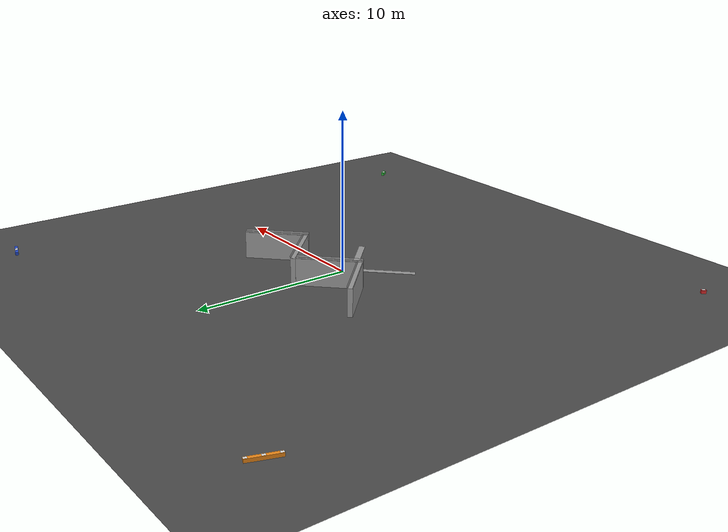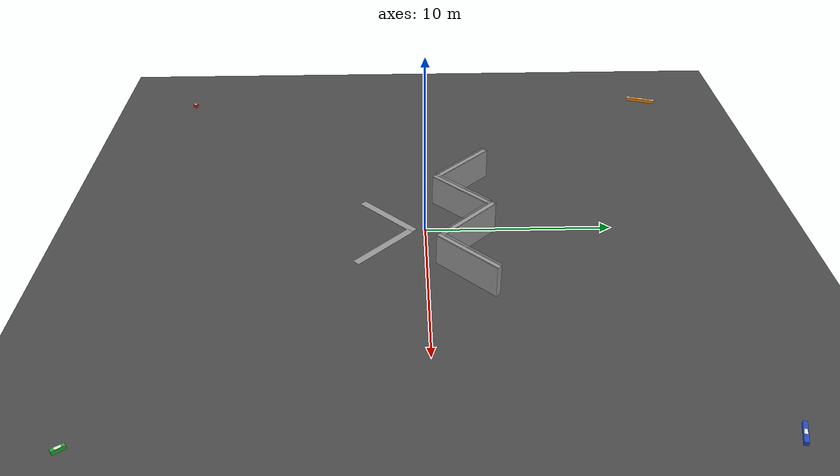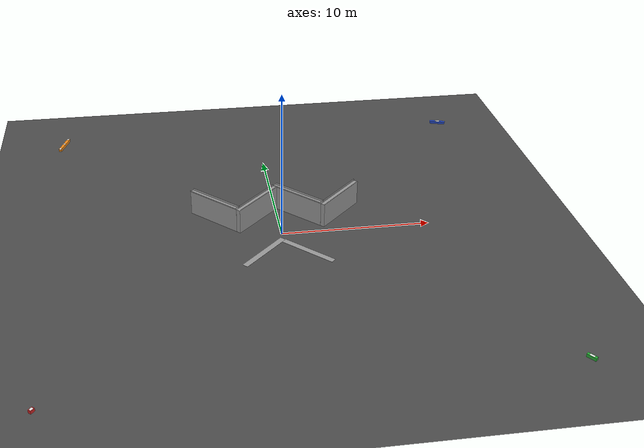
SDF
<?xml version="1.0" ?>
<?xml-model href="http://sdformat.org/schemas/root.xsd" schematypens="http://www.w3.org/2001/XMLSchema"?>
<sdf version="1.5">
  <world name="default">

    <plugin name="mrs_gazebo_static_transform_republisher_plugin" filename="libMRSGazeboStaticTransformRepublisher.so"/>
	<plugin name="mrs_gazebo_link_attacher_plugin" filename="libMRSGazeboLinkAttacherPlugin.so"/>

    <plugin name="mrs_gazebo_rviz_camera_synchronizer" filename="libMRSGazeboRvizCameraSynchronizer.so" >
      <target_frame_id>gazebo_user_camera</target_frame_id>
      <world_origin_frame_id>uav1/gps_origin</world_origin_frame_id>
      <frame_to_follow>uav1::base_link</frame_to_follow>
    </plugin>

    <spherical_coordinates>
      <surface_model>EARTH_WGS84</surface_model>
      <latitude_deg>47.397743</latitude_deg>
      <longitude_deg>8.545594</longitude_deg>
      <elevation>0.0</elevation>
      <heading_deg>0</heading_deg>
    </spherical_coordinates>

    <physics name="default_physics" default="0" type="ode">
      <gravity>0 0 -9.8066</gravity>
      <ode>
        <solver>
          <type>quick</type>
          <iters>50</iters>
          <sor>1.0</sor>
          <use_dynamic_moi_rescaling>0</use_dynamic_moi_rescaling>
        </solver>
        <constraints>
          <cfm>0</cfm>
          <erp>0.2</erp>
          <contact_max_correcting_vel>1000</contact_max_correcting_vel>
          <contact_surface_layer>0.001</contact_surface_layer>
        </constraints>
      </ode>
      <max_step_size>0.004</max_step_size>
      <real_time_factor>1</real_time_factor>
      <real_time_update_rate>250</real_time_update_rate>
      <magnetic_field>6.0e-06 2.3e-05 -4.2e-05</magnetic_field>
    </physics>

    <scene>
      <shadows>false</shadows>
      <sky>
        <clouds/>
      </sky>
    </scene>

    <light type="directional" name="sun">
      <cast_shadows>true</cast_shadows>
      <pose>250 250 600 0 0 0</pose>
      <diffuse>0.8 0.8 0.8 1</diffuse>
      <specular>0.2 0.2 0.2 1</specular>
      <attenuation>
        <range>1000</range>
        <constant>0.9</constant>
        <linear>0.01</linear>
        <quadratic>0.001</quadratic>
      </attenuation>
      <direction>0 0 -1</direction>
    </light>

    <model name="ground_plane">
      <static>true</static>
      <link name="link">
        <collision name="collision">
          <pose>0 0 0 0 0 0</pose>
          <geometry>
            <plane>
              <normal>0 0 1</normal>
              <size>250 250</size>
            </plane>
          </geometry>
          <surface>
            <friction>
              <ode>
                <mu>1</mu>
                <mu2>1</mu2>
              </ode>
            </friction>
          </surface>
        </collision>
        <visual name="grass">
          <pose>0 0 0 0 0 0</pose>
          <cast_shadows>false</cast_shadows>
          <geometry>
            <plane>
              <normal>0 0 1</normal>
              <size>50 60</size>
            </plane>
          </geometry>
          <material>
            <script>
              <uri>model://asphalt_plane/materials/scripts</uri>
              <uri>model://asphalt_plane/materials/textures</uri>
              <name>vrc/asphalt</name>
            </script>
          </material>
        </visual>
      </link>
    </model>

  <!--
    mbzirc_uav_assembly_wall 4 *
    roslaunch wall_simulation simulation_1brick_new.launch
    mbzirc_ugv_assembly_wall 2 *
  -->

    <include>
        <name>uav_assembly_wall_1</name>
        <pose>-1.41 2.0 0 0 0 0.785</pose>
        <static>true</static>
        <uri>model://mbzirc_uav_assembly_wall</uri>
    </include>

    <include>
        <name>uav_assembly_wall_2</name>
        <pose>1.41 2.2121 0 0 0 -0.785</pose>
        <static>true</static>
        <uri>model://mbzirc_uav_assembly_wall</uri>
    </include>

    <include>
        <name>uav_assembly_wall_3</name>
        <pose>4.242640687 2.0 0 0 0 0.785</pose>
        <static>true</static>
        <uri>model://mbzirc_uav_assembly_wall</uri>
    </include>

    <include>
        <name>uav_assembly_wall_4</name>
        <pose>-4.242640687 2.2121 0 0 0 -0.785</pose>
        <static>true</static>
        <uri>model://mbzirc_uav_assembly_wall</uri>
    </include>

    <include>
        <name>ugv_assembly_wall_1</name>
        <pose>-1.41 -2.0 0 0 0 0.785</pose>
        <static>true</static>
        <uri>model://mbzirc_ugv_assembly_wall</uri>
    </include>

    <include>
        <name>ugv_assembly_wall_2</name>
        <pose>1.41 -2.2121 0 0 0 -0.785</pose>
        <static>true</static>
        <uri>model://mbzirc_ugv_assembly_wall</uri>
    </include>

    <include>
      <name>blue_cube_1</name>
      <pose>15 15 0.005 0 0 -0.3</pose>
      <static>false</static>
      <uri>model://mbzirc_blue_brick</uri>
    </include>

    <include>
      <name>red_cube_1</name>
      <pose>-15 -15 0.005 0 0 0.84</pose>
      <static>false</static>
      <uri>model://mbzirc_red_brick</uri>
    </include>

    <include>
      <name>green_cube_1</name>
      <pose>15 -15 0.005 0 0 2.2</pose>
      <static>false</static>
      <uri>model://mbzirc_green_brick</uri>
    </include>

    <include>
      <name>orange_cube_1</name>
      <pose>-15 15 0.005 0 0 -1.9</pose>
      <static>false</static>
      <uri>model://mbzirc_orange_brick</uri>
    </include>

    <gui>
      <camera name="camera">
        <pose>-60 -100 30 0 0.4 0.89</pose>
      </camera>
    </gui>
  </world>
</sdf>

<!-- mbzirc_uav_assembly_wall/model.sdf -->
<sdf version="1.5">
  <model name="mbzirc_uav_assembly_wall">
    <static>true</static>
    <link name="link">
      <pose>0 0 0.85 0 0 0</pose>

      <collision name="collision_wall">
        <geometry>
          <box>
            <size>4.0 0.3 1.7</size>
          </box>
        </geometry>
      </collision>

      <visual name="visual_wall">
        <cast_shadows>true</cast_shadows>
        <geometry>
          <box>
            <size>4.0 0.3 1.7</size>
          </box>
        </geometry>
        <material>
          <script>
            <uri>model://mbzirc_uav_assembly_wall/materials/scripts</uri>
            <uri>model://mbzirc_uav_assembly_wall/materials/textures</uri>
            <name>vrc/grey_wall</name>
          </script>
        </material>
      </visual>

      <visual name="visual_top_plate">
        <pose>0 00 0.85 0 0 0</pose>
        <geometry>
          <box>
            <size>4.0 0.3 0.005</size>
          </box>
        </geometry>
        <material>
          <script>
            <name>Gazebo/Grey</name>
            <uri>file://media/materials/scripts/gazebo.material</uri>
          </script>
        </material>
      </visual>

      <collision name="collision_front_channel">
        <pose>0 0.158 0.9 -0.643 0 0</pose>
        <geometry>
          <box>
            <size>4.0 0.005 0.125</size>
          </box>
        </geometry>
      </collision>

      <visual name="visual_front_channel">
        <pose>0 0.158 0.9 -0.643 0 0</pose>
        <geometry>
          <box>
            <size>4.0 0.005 0.125</size>
          </box>
        </geometry>
        <material>
          <script>
            <name>Gazebo/GreyTransparent</name>
            <uri>file://media/materials/scripts/gazebo.material</uri>
          </script>
        </material>
      </visual>

      <collision name="collision_back_channel">
        <pose>0 -0.158 0.9 0.643 0 0</pose>
        <geometry>
          <box>
            <size>4.0 0.005 0.125</size>
          </box>
        </geometry>
      </collision>

      <visual name="visual_back_channel">
        <pose>0 -0.158 0.9 0.643 0 0</pose>
        <geometry>
          <box>
            <size>4.0 0.005 0.125</size>
          </box>
        </geometry>
        <material>
          <script>
            <name>Gazebo/GreyTransparent</name>
            <uri>file://media/materials/scripts/gazebo.material</uri>
          </script>
        </material>
      </visual>

    </link>
  </model>
</sdf>

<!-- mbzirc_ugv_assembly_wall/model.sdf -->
<sdf version="1.5">
  <model name="mbzirc_ugv_assembly_wall">
    <static>true</static>
    <link name="link">
      <pose>0 0 0.003 0 0 0</pose>

      <collision name="collision_top_plate">
        <geometry>
          <box>
            <size>4.0 0.4 0.003</size>
          </box>
        </geometry>
      </collision>

      <visual name="visual_top_plate">
        <pose>0 0 0 0 0 0</pose>
        <geometry>
          <box>
            <size>4.0 0.4 0.003</size>
          </box>
        </geometry>
        <material>
          <script>
            <name>Gazebo/Grey</name>
            <uri>file://media/materials/scripts/gazebo.material</uri>
          </script>
        </material>
      </visual>

    </link>
  </model>
</sdf>

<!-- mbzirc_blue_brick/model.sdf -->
<sdf version="1.5">
  <model name="mbzirc_blue_brick">
      <static>0</static>
	  <link name="link">
		  <pose>0 0 0.1 0 0 0</pose>
	      <inertial>
	          <mass>0.381</mass>
	          <inertia>
	            <ixx>0.00252984</ixx>
	            <ixy>0</ixy>
	            <ixz>0</ixz>
	            <iyy>0.04680204</iyy>
	            <iyz>0</iyz>
	            <izz>0.04680204</izz>
	          </inertia>
	      </inertial>
		  <visual name="main_box">
			<geometry>
		      <box>
		       	<size>1.2 0.2 0.2</size>
		      </box>
		   	</geometry>
		    <material>
              <script>
                <uri>file://media/materials/scripts/gazebo.material</uri>
                <name>Gazebo/Blue</name>
              </script>
            </material>
          </visual>
          <visual name="white_plate">
          	<pose>0 0 0.1 0 0 0</pose>
			<geometry>
		      <box>
		       	<size>0.3 0.15 0.006</size>
		      </box>
		   	</geometry>
		    <material>
              <script>
                <uri>file://media/materials/scripts/gazebo.material</uri>
                <name>Gazebo/White</name>
              </script>
            </material>
          </visual>
	      <collision name="collision">
	        <pose>0 0 0 0 0 0</pose>
	        <geometry>
		      <box>
		       	<size>1.2 0.2 0.2</size>
		      </box>
		   	</geometry>
	        <max_contacts>10</max_contacts>
	        <surface>
	            <contact>
	              <ode/>
	            </contact>
	            <bounce/>
	            <friction>
	              <ode/>
	            </friction>
            </surface>
	      </collision>
	      <self_collide>0</self_collide>
          <kinematic>0</kinematic>
          <gravity>1</gravity>
	  </link>
  </model>
</sdf>

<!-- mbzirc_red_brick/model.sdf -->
<sdf version="1.5">
  <model name="mbzirc_red_brick">
      <static>0</static>
	  <link name="link">
		  <pose>0 0 0.1 0 0 0</pose>
		  <inertial>
	          <mass>0.7</mass>
	          <inertia>
	            <ixx>0.004648</ixx>
	            <ixy>0</ixy>
	            <ixz>0</ixz>
	            <iyy>0.007553</iyy>
	            <iyz>0</iyz>
	            <izz>0.007553</izz>
	          </inertia>
          </inertial>
		  <visual name="main_box">
			<geometry>
		      <box>
		       	<size>0.3 0.2 0.2</size>
		      </box>
		   	</geometry>
		    <material>
              <script>
                <uri>file://media/materials/scripts/gazebo.material</uri>
                <name>Gazebo/Red</name>
              </script>
            </material>
          </visual>
          <visual name="white_plate">
          	<pose>0 0 0.1 0 0 0</pose>
			<geometry>
		      <box>
		       	<size>0.2 0.15 0.006</size>
		      </box>
		   	</geometry>
		    <material>
              <script>
                <uri>file://media/materials/scripts/gazebo.material</uri>
                <name>Gazebo/White</name>
              </script>
            </material>
          </visual>
	      <collision name="collision">
	        <pose>0 0 0 0 0 0</pose>
	        <geometry>
		      <box>
		       	<size>0.3 0.2 0.2</size>
		      </box>
		   	</geometry>
	        <max_contacts>10</max_contacts>
	        <surface>
	            <contact>
	              <ode/>
	            </contact>
	            <bounce/>
	            <friction>
	              <ode/>
	            </friction>
            </surface>
	      </collision>
	      <self_collide>0</self_collide>
          <kinematic>0</kinematic>
          <gravity>1</gravity>
	  </link>
  </model>
</sdf>

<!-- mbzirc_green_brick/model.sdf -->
<sdf version="1.5">
  <model name="mbzirc_green_brick">
      <static>0</static>
	  <link name="link">
		  <pose>0 0 0.1 0 0 0</pose>
		  <inertial>
	          <mass>0.485</mass>
	          <inertia>
	            <ixx>0.003220</ixx>
	            <ixy>0</ixy>
	            <ixz>0</ixz>
	            <iyy>0.016102</iyy>
	            <iyz>0</iyz>
	            <izz>0.016102</izz>
	          </inertia>
          </inertial>
		  <visual name="main_box">
			<geometry>
		      <box>
		       	<size>0.6 0.2 0.2</size>
		      </box>
		   	</geometry>
		    <material>
              <script>
                <uri>file://media/materials/scripts/gazebo.material</uri>
                <name>Gazebo/Green</name>
              </script>
            </material>
          </visual>
          <visual name="white_plate">
          	<pose>0 0 0.1 0 0 0</pose>
			<geometry>
		      <box>
		       	<size>0.3 0.15 0.006</size>
		      </box>
		   	</geometry>
		    <material>
              <script>
                <uri>file://media/materials/scripts/gazebo.material</uri>
                <name>Gazebo/White</name>
              </script>
            </material>
          </visual>
	      <collision name="collision">
	        <pose>0 0 0 0 0 0</pose>
	        <geometry>
		      <box>
		       	<size>0.6 0.2 0.2</size>
		      </box>
		   	</geometry>
	        <max_contacts>10</max_contacts>
	        <surface>
	            <contact>
	              <ode/>
	            </contact>
	            <bounce/>
	            <friction>
	              <ode/>
	            </friction>
            </surface>
	      </collision>
	      <self_collide>0</self_collide>
          <kinematic>0</kinematic>
          <gravity>1</gravity>
	  </link>
  </model>
</sdf>

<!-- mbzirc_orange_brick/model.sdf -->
<sdf version="1.5">
  <model name="mbzirc_orange_brick">
      <static>0</static>
	  <link name="link">
		  <pose>0 0 0.1 0 0 0</pose>
	        <inertial>
	          <mass>1.2</mass>
	          <inertia>
	            <ixx>0.007968</ixx>
	            <ixy>0</ixy>
	            <ixz>0</ixz>
	            <iyy>0.326688</iyy>
	            <iyz>0</iyz>
	            <izz>0.326688</izz>
	          </inertia>
	        </inertial>
		  <visual name="main_box">
			<geometry>
		      <box>
		       	<size>1.8 0.2 0.2</size>
		      </box>
		   	</geometry>
		    <material>
              <script>
                <uri>file://media/materials/scripts/gazebo.material</uri>
                <name>Gazebo/Orange</name>
              </script>
            </material>
          </visual>
          <visual name="white_plate_center">
          	<pose>0 0 0.1 0 0 0</pose>
			<geometry>
		      <box>
		       	<size>0.19 0.15 0.006</size>
		      </box>
		   	</geometry>
		    <material>
              <script>
                <uri>file://media/materials/scripts/gazebo.material</uri>
                <name>Gazebo/White</name>
              </script>
            </material>
          </visual>
          <visual name="white_plate_left">
          	<pose>-0.805 0 0.1 0 0 0</pose>
			<geometry>
		      <box>
		       	<size>0.19 0.15 0.006</size>
		      </box>
		   	</geometry>
		    <material>
              <script>
                <uri>file://media/materials/scripts/gazebo.material</uri>
                <name>Gazebo/White</name>
              </script>
            </material>
          </visual>
          <visual name="white_plate_right">
          	<pose>0.805 0 0.1 0 0 0</pose>
			<geometry>
		      <box>
		       	<size>0.19 0.15 0.006</size>
		      </box>
		   	</geometry>
		    <material>
              <script>
                <uri>file://media/materials/scripts/gazebo.material</uri>
                <name>Gazebo/White</name>
              </script>
            </material>
          </visual>
	      <collision name="collision">
	        <pose>0 0 0 0 0 0</pose>
	        <geometry>
		      <box>
		       	<size>1.8 0.2 0.2</size>
		      </box>
		   	</geometry>
	        <max_contacts>10</max_contacts>
	        <surface>
	            <contact>
	              <ode/>
	            </contact>
	            <bounce/>
	            <friction>
	              <ode/>
	            </friction>
            </surface>
	      </collision>
	      <self_collide>0</self_collide>
          <kinematic>0</kinematic>
          <gravity>1</gravity>
	  </link>
  </model>
</sdf>
